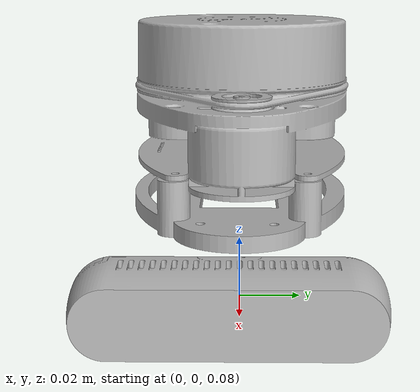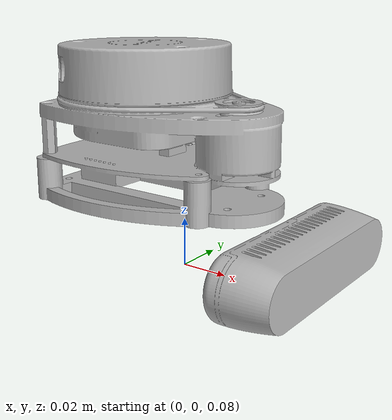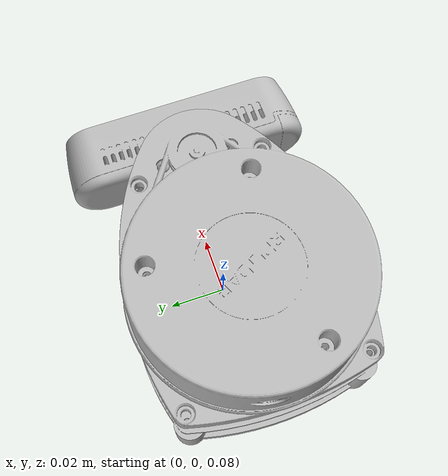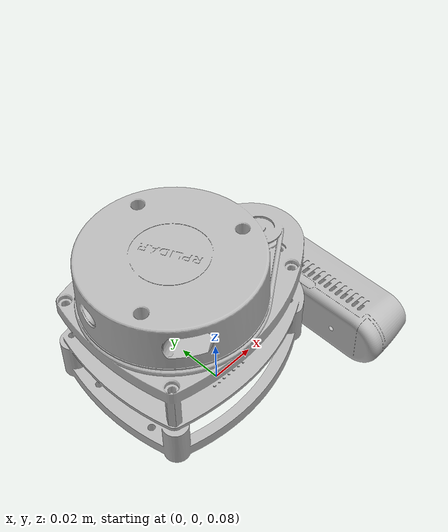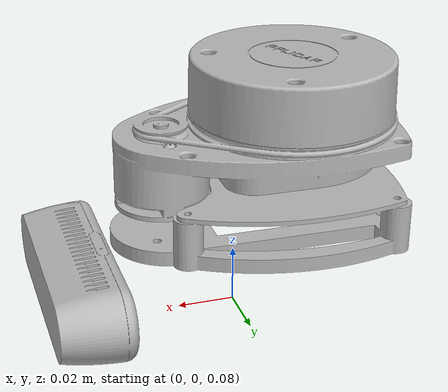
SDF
<?xml version="1.0"?>
<sdf version="1.11">
  <!-- STATIC_CONTACT_TWIN_NOT_RUNTIME_READY: S3.3.64 static kinematic parity only. -->
  <model name="ROBOT_URDF_final">
    <link name="base_link">
      <inertial>
        <pose>-0.004680971074212348 0.001013778159962492 0.022702840329693212 0 0 0</pose>
        <mass>2</mass>
        <inertia>
          <ixx>0.032621</ixx><ixy>-2.7e-05</ixy><ixz>0.003248</ixz>
          <iyy>0.088559</iyy><iyz>0.000162</iyz><izz>0.100296</izz>
        </inertia>
      </inertial>
      <collision name="s3_d3_base_contact_collision">
        <pose>0 0 0 0 0 0</pose>
        <geometry><box><size>0.4 0.28 0.10</size></box></geometry>
      </collision>
      <sensor name="s3_d3_base_contact_sensor" type="contact">
        <always_on>true</always_on>
        <update_rate>100</update_rate>
        <contact>
          <collision>s3_d3_base_contact_collision</collision>
          <topic>/s3_d3/contact/raw</topic>
        </contact>
      </sensor>
    </link>
    <link name="Wheel_LF_1">
      <pose relative_to="Wheel_LF_Joint">0 0 0 0 0 0</pose>
      <inertial>
        <pose>7.730831169672214e-09 0.020486354622651984 7.0657725812633965e-06 0 0 0</pose>
        <mass>0.15</mass>
        <inertia><ixx>0.000111</ixx><ixy>-0.0</ixy><ixz>-0.0</ixz><iyy>0.000179</iyy><iyz>0.0</iyz><izz>0.000111</izz></inertia>
      </inertial>
      <collision name="Wheel_LF_1_collision">
        <pose>0 0 0 1.5708 0 0</pose>
        <geometry><cylinder><radius>0.0485</radius><length>0.04</length></cylinder></geometry>
      </collision>
    </link>
    <link name="Wheel_RF_1">
      <pose relative_to="Wheel_RF_Joint">0 0 0 0 0 0</pose>
      <inertial>
        <pose>8.176073262866623e-09 -0.020486352801042898 7.067794141380618e-06 0 0 0</pose>
        <mass>0.15</mass>
        <inertia><ixx>0.000111</ixx><ixy>0.0</ixy><ixz>-0.0</ixz><iyy>0.000179</iyy><iyz>-0.0</iyz><izz>0.000111</izz></inertia>
      </inertial>
      <collision name="Wheel_RF_1_collision">
        <pose>0 0 0 1.5708 0 0</pose>
        <geometry><cylinder><radius>0.0485</radius><length>0.04</length></cylinder></geometry>
      </collision>
    </link>
    <link name="Wheel_RB_1">
      <pose relative_to="Wheel_RB_Joint">0 0 0 0 0 0</pose>
      <inertial>
        <pose>-1.1186073178848233e-09 -0.020486363591042916 7.059103033960068e-06 0 0 0</pose>
        <mass>0.15</mass>
        <inertia><ixx>0.000111</ixx><ixy>0.0</ixy><ixz>0.0</ixz><iyy>0.000179</iyy><iyz>-0.0</iyz><izz>0.000111</izz></inertia>
      </inertial>
      <collision name="Wheel_RB_1_collision">
        <pose>0 0 0 1.5708 0 0</pose>
        <geometry><cylinder><radius>0.0485</radius><length>0.04</length></cylinder></geometry>
      </collision>
    </link>
    <link name="Wheel_LB_1">
      <pose relative_to="Wheel_LB_Joint">0 0 0 0 0 0</pose>
      <inertial>
        <pose>-1.5638501049686226e-09 0.02048636176944614 7.061124594778118e-06 0 0 0</pose>
        <mass>0.15</mass>
        <inertia><ixx>0.000111</ixx><ixy>-0.0</ixy><ixz>0.0</ixz><iyy>0.000179</iyy><iyz>0.0</iyz><izz>0.000111</izz></inertia>
      </inertial>
      <collision name="Wheel_LB_1_collision">
        <pose>0 0 0 1.5708 0 0</pose>
        <geometry><cylinder><radius>0.0485</radius><length>0.04</length></cylinder></geometry>
      </collision>
    </link>
    <link name="IntelRealsense_D435_Multibody_1">
      <pose relative_to="Camera_Joint">0 0 0 0 0 0</pose>
      <inertial>
        <pose>0.01195124704164778 -0.0026011079695855525 -6.051171193946492e-05 0 0 0</pose>
        <mass>0.35</mass>
        <inertia><ixx>0.000227</ixx><ixy>-1e-06</ixy><ixz>-0.0</ixz><iyy>3.2e-05</iyy><iyz>-0.0</iyz><izz>0.000229</izz></inertia>
      </inertial>
      <visual name="s3_d3_camera_visual">
        <pose relative_to="IntelRealsense_D435_Multibody_1">-0.043208 0.0 -0.095165 0 0 0</pose>
        <geometry><mesh><uri>ROBOT_URDF_final_description/meshes/IntelRealsense_D435_Multibody_1.stl</uri><scale>0.001 0.001 0.001</scale></mesh></geometry>
      </visual>
    </link>
    <link name="RPLiDAR_A1M8_1">
      <pose relative_to="Lidar_Joint">0 0 0 0 0 0</pose>
      <inertial>
        <pose>-0.05153713704514566 8.887643777943633e-05 0.027012153068496997 0 0 0</pose>
        <mass>0.7</mass>
        <inertia><ixx>0.000423</ixx><ixy>-6e-06</ixy><ixz>4.5e-05</ixz><iyy>0.000745</iyy><iyz>5e-06</iyz><izz>0.000767</izz></inertia>
      </inertial>
      <visual name="s3_d3_lidar_visual">
        <pose relative_to="RPLiDAR_A1M8_1">-0.0432 0.0 -0.107565 0 0 0</pose>
        <geometry><mesh><uri>ROBOT_URDF_final_description/meshes/RPLiDAR_A1M8_1.stl</uri><scale>0.001 0.001 0.001</scale></mesh></geometry>
      </visual>
    </link>

    <joint name="Wheel_LF_Joint" type="continuous">
      <pose relative_to="base_link">0.108 0.11109 -0.0175 0 0 0</pose><parent>base_link</parent><child>Wheel_LF_1</child><axis><xyz expressed_in="base_link">0.0 1.0 0.0</xyz></axis>
    </joint>
    <joint name="Wheel_RF_Joint" type="continuous">
      <pose relative_to="base_link">0.108 -0.11109 -0.0175 0 0 0</pose><parent>base_link</parent><child>Wheel_RF_1</child><axis><xyz expressed_in="base_link">0.0 1.0 0.0</xyz></axis>
    </joint>
    <joint name="Wheel_RB_Joint" type="continuous">
      <pose relative_to="base_link">-0.108 -0.11109 -0.0175 0 0 0</pose><parent>base_link</parent><child>Wheel_RB_1</child><axis><xyz expressed_in="base_link">0.0 1.0 0.0</xyz></axis>
    </joint>
    <joint name="Wheel_LB_Joint" type="continuous">
      <pose relative_to="base_link">-0.108 0.11109 -0.0175 0 0 0</pose><parent>base_link</parent><child>Wheel_LB_1</child><axis><xyz expressed_in="base_link">0.0 1.0 0.0</xyz></axis>
    </joint>
    <joint name="Camera_Joint" type="fixed">
      <pose relative_to="base_link">0.043208 0.0 0.095165 0 0 0</pose><parent>base_link</parent><child>IntelRealsense_D435_Multibody_1</child>
    </joint>
    <joint name="Lidar_Joint" type="fixed">
      <pose relative_to="base_link">0.0432 0.0 0.107565 0 0 0</pose><parent>base_link</parent><child>RPLiDAR_A1M8_1</child>
    </joint>
  </model>
</sdf>
